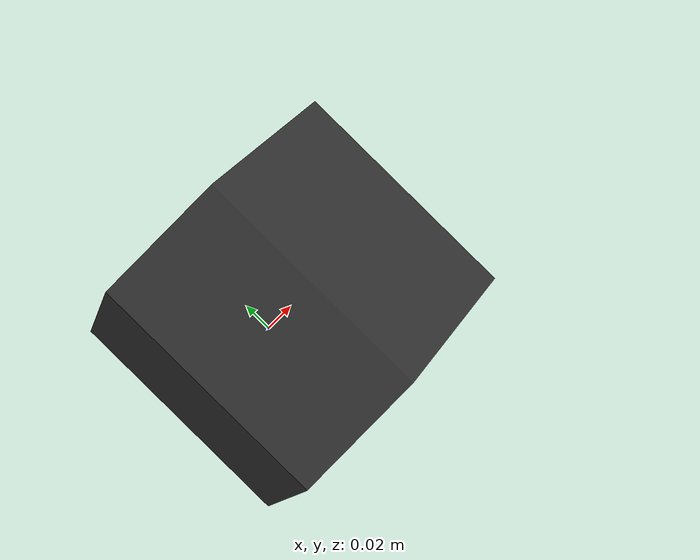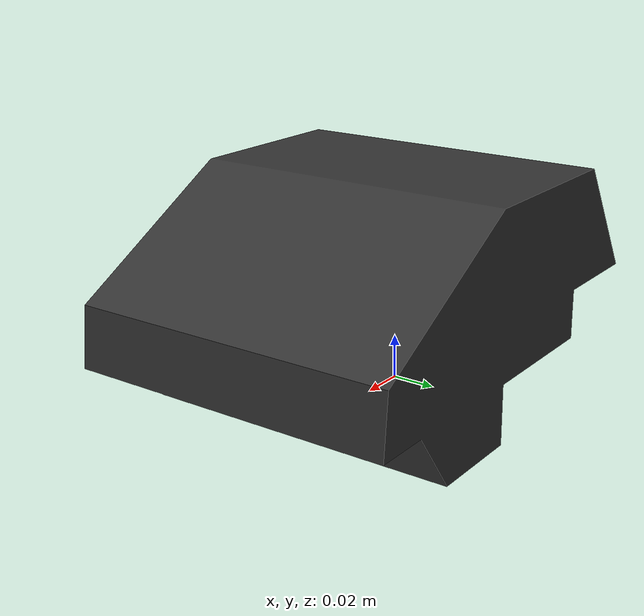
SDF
<?xml version='1.0'?>
<sdf version='1.6'>
  <model name='echo_bot'>
    <static>false</static>
    <self_collide>1</self_collide>

    <link name="torso_link">
      <self_collide>1</self_collide>
      <pose>0 0 0 0 0 0</pose>
      <inertial>
        <inertia>
          <ixx>0.006594</ixx>
          <ixy>0.0</ixy>
          <ixz>0.000999</ixz>
          <iyy>0.007405</iyy>
          <iyz>0.0</iyz>
          <izz>0.010608</izz>
        </inertia>
        <mass>2.915</mass>
        <pose>0.025 0 0.053 0 0 0</pose>
      </inertial>

      <collision name="torso_collision">
        <geometry>
          <mesh>
            <uri>model://echo_bot/meshes/STL/torso.stl</uri>
          </mesh>
        </geometry>
        <surface>
          <friction>
            <ode>
              <mu>0.05</mu>
              <mu2>0.05</mu2>
            </ode>
          </friction>
        </surface>
      </collision>

      <visual name="torso_visual">
        <geometry>
          <mesh>
            <uri>model://echo_bot/meshes/DAE/torso.dae</uri>
          </mesh>
        </geometry>
      </visual>
    </link>
     </model>
</sdf>
